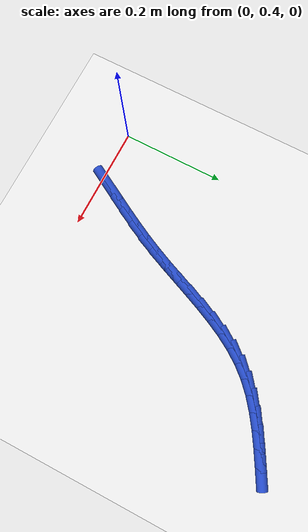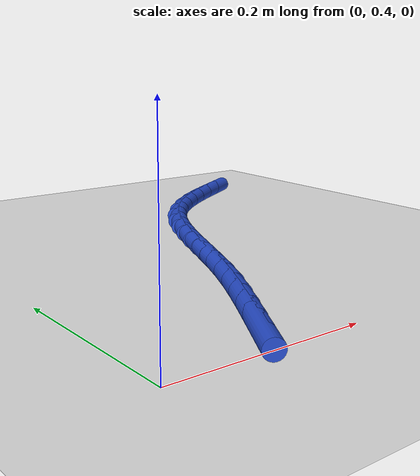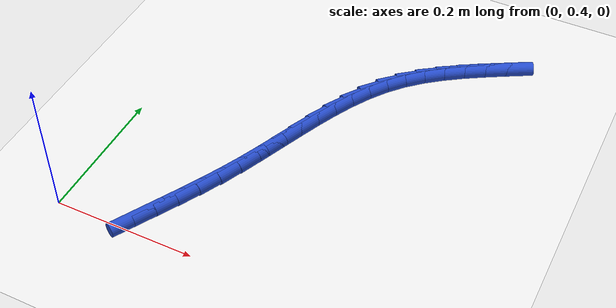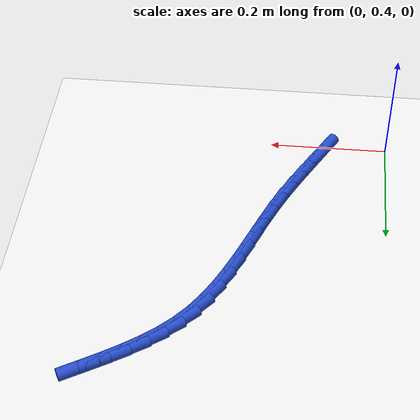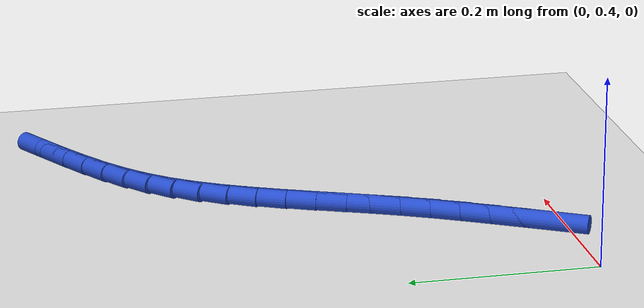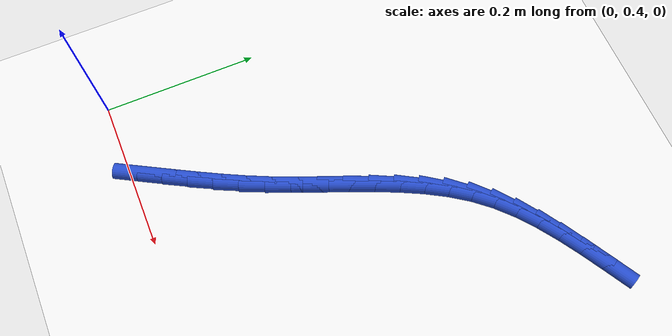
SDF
<sdf version="1.6">
 <world name="default">
  <model name="ground_plane">
   <static>1</static>
   <link name="link">
    <collision name="collision">
     <geometry><plane><normal>0 0 1</normal><size>100 100</size></plane></geometry>
     <surface><friction><ode><mu>100</mu><mu2>50</mu2></ode></friction></surface>
    </collision>
    <visual name="visual">
     <cast_shadows>0</cast_shadows>
     <geometry><plane><normal>0 0 1</normal><size>100 100</size></plane></geometry>
     <material>
      <script><uri>file://media/materials/scripts/gazebo.material</uri><name>Gazebo/WhiteGlow</name></script>
     </material>
    </visual>
   </link>
  </model>
  <model name="line">
   <link name="link_14">
    <pose>0.11067707280748393 0.41863867784121034 0.01 0 1.57 1.055687970877207</pose>
    <collision name="collision">
     <geometry><cylinder><radius>0.01</radius><length>0.08</length></cylinder></geometry>
    </collision>
    <visual name="visual">
     <material>
      <script><name>Gazebo/Blue</name><uri>file://media/materials/scripts/gazebo.material</uri></script>
     </material>
     <geometry><cylinder><radius>0.01</radius><length>0.08</length></cylinder></geometry>
    </visual>
   </link>
   <link name="link_15">
    <pose>0.1262157592240613 0.44608808152789425 0.01 0 1.57 1.0591641786545154</pose>
    <collision name="collision">
     <geometry><cylinder><radius>0.01</radius><length>0.08</length></cylinder></geometry>
    </collision>
    <visual name="visual">
     <material>
      <script><name>Gazebo/Blue</name><uri>file://media/materials/scripts/gazebo.material</uri></script>
     </material>
     <geometry><cylinder><radius>0.01</radius><length>0.08</length></cylinder></geometry>
    </visual>
   </link>
   <link name="link_16">
    <pose>0.141734388219465 0.47372571720743983 0.01 0 1.57 1.071693252115393</pose>
    <collision name="collision">
     <geometry><cylinder><radius>0.01</radius><length>0.08</length></cylinder></geometry>
    </collision>
    <visual name="visual">
     <material>
      <script><name>Gazebo/Blue</name><uri>file://media/materials/scripts/gazebo.material</uri></script>
     </material>
     <geometry><cylinder><radius>0.01</radius><length>0.08</length></cylinder></geometry>
    </visual>
   </link>
   <link name="link_17">
    <pose>0.15698144977811287 0.5016948717338846 0.01 0 1.57 1.093129509462431</pose>
    <collision name="collision">
     <geometry><cylinder><radius>0.01</radius><length>0.08</length></cylinder></geometry>
    </collision>
    <visual name="visual">
     <material>
      <script><name>Gazebo/Blue</name><uri>file://media/materials/scripts/gazebo.material</uri></script>
     </material>
     <geometry><cylinder><radius>0.01</radius><length>0.08</length></cylinder></geometry>
    </visual>
   </link>
   <link name="link_18">
    <pose>0.1717054338844228 0.5301388319612659 0.01 0 1.57 1.1232820498886869</pose>
    <collision name="collision">
     <geometry><cylinder><radius>0.01</radius><length>0.08</length></cylinder></geometry>
    </collision>
    <visual name="visual">
     <material>
      <script><name>Gazebo/Blue</name><uri>file://media/materials/scripts/gazebo.material</uri></script>
     </material>
     <geometry><cylinder><radius>0.01</radius><length>0.08</length></cylinder></geometry>
    </visual>
   </link>
   <link name="link_19">
    <pose>0.18565496490613353 0.5592007794158209 0.01 0 1.57 1.1563778654326762</pose>
    <collision name="collision">
     <geometry><cylinder><radius>0.01</radius><length>0.08</length></cylinder></geometry>
    </collision>
    <visual name="visual">
     <material>
      <script><name>Gazebo/Blue</name><uri>file://media/materials/scripts/gazebo.material</uri></script>
     </material>
     <geometry><cylinder><radius>0.01</radius><length>0.08</length></cylinder></geometry>
    </visual>
   </link>
   <link name="link_20">
    <pose>0.1987239112239782 0.5889100553622971 0.01 0 1.57 1.1765437617916505</pose>
    <collision name="collision">
     <geometry><cylinder><radius>0.01</radius><length>0.08</length></cylinder></geometry>
    </collision>
    <visual name="visual">
     <material>
      <script><name>Gazebo/Blue</name><uri>file://media/materials/scripts/gazebo.material</uri></script>
     </material>
     <geometry><cylinder><radius>0.01</radius><length>0.08</length></cylinder></geometry>
    </visual>
   </link>
   <link name="link_21">
    <pose>0.21122796983377556 0.6189653775935705 0.01 0 1.57 1.1812873094814231</pose>
    <collision name="collision">
     <geometry><cylinder><radius>0.01</radius><length>0.08</length></cylinder></geometry>
    </collision>
    <visual name="visual">
     <material>
      <script><name>Gazebo/Blue</name><uri>file://media/materials/scripts/gazebo.material</uri></script>
     </material>
     <geometry><cylinder><radius>0.01</radius><length>0.08</length></cylinder></geometry>
    </visual>
   </link>
   <link name="link_22">
    <pose>0.22355898667686047 0.6490057794054344 0.01 0 1.57 1.1705714123214415</pose>
    <collision name="collision">
     <geometry><cylinder><radius>0.01</radius><length>0.08</length></cylinder></geometry>
    </collision>
    <visual name="visual">
     <material>
      <script><name>Gazebo/Blue</name><uri>file://media/materials/scripts/gazebo.material</uri></script>
     </material>
     <geometry><cylinder><radius>0.01</radius><length>0.08</length></cylinder></geometry>
    </visual>
   </link>
   <link name="link_23">
    <pose>0.23610880769456769 0.6786702940936831 0.01 0 1.57 1.1438384274842417</pose>
    <collision name="collision">
     <geometry><cylinder><radius>0.01</radius><length>0.08</length></cylinder></geometry>
    </collision>
    <visual name="visual">
     <material>
      <script><name>Gazebo/Blue</name><uri>file://media/materials/scripts/gazebo.material</uri></script>
     </material>
     <geometry><cylinder><radius>0.01</radius><length>0.08</length></cylinder></geometry>
    </visual>
   </link>
   <link name="link_24">
    <pose>0.2492692788282322 0.7075979549541104 0.01 0 1.57 1.1000437780483252</pose>
    <collision name="collision">
     <geometry><cylinder><radius>0.01</radius><length>0.08</length></cylinder></geometry>
    </collision>
    <visual name="visual">
     <material>
      <script><name>Gazebo/Blue</name><uri>file://media/materials/scripts/gazebo.material</uri></script>
     </material>
     <geometry><cylinder><radius>0.01</radius><length>0.08</length></cylinder></geometry>
    </visual>
   </link>
   <link name="link_25">
    <pose>0.2634322460191886 0.7354277952825098 0.01 0 1.57 1.037807565165716</pose>
    <collision name="collision">
     <geometry><cylinder><radius>0.01</radius><length>0.08</length></cylinder></geometry>
    </collision>
    <visual name="visual">
     <material>
      <script><name>Gazebo/Blue</name><uri>file://media/materials/scripts/gazebo.material</uri></script>
     </material>
     <geometry><cylinder><radius>0.01</radius><length>0.08</length></cylinder></geometry>
    </visual>
   </link>
   <link name="link_26">
    <pose>0.2789895552087718 0.7617988483746758 0.01 0 1.57 0.9557754795872594</pose>
    <collision name="collision">
     <geometry><cylinder><radius>0.01</radius><length>0.08</length></cylinder></geometry>
    </collision>
    <visual name="visual">
     <material>
      <script><name>Gazebo/Blue</name><uri>file://media/materials/scripts/gazebo.material</uri></script>
     </material>
     <geometry><cylinder><radius>0.01</radius><length>0.08</length></cylinder></geometry>
    </visual>
   </link>
   <link name="link_27">
    <pose>0.2963330523383165 0.7863501475264018 0.01 0 1.57 0.8540498385770475</pose>
    <collision name="collision">
     <geometry><cylinder><radius>0.01</radius><length>0.08</length></cylinder></geometry>
    </collision>
    <visual name="visual">
     <material>
      <script><name>Gazebo/Blue</name><uri>file://media/materials/scripts/gazebo.material</uri></script>
     </material>
     <geometry><cylinder><radius>0.01</radius><length>0.08</length></cylinder></geometry>
    </visual>
   </link>
   <link name="link_28">
    <pose>0.3158392205192975 0.8087368588711776 0.01 0 1.57 0.7508790296116303</pose>
    <collision name="collision">
     <geometry><cylinder><radius>0.01</radius><length>0.08</length></cylinder></geometry>
    </collision>
    <visual name="visual">
     <material>
      <script><name>Gazebo/Blue</name><uri>file://media/materials/scripts/gazebo.material</uri></script>
     </material>
     <geometry><cylinder><radius>0.01</radius><length>0.08</length></cylinder></geometry>
    </visual>
   </link>
   <link name="link_29">
    <pose>0.3375334818481241 0.8289828052567043 0.01 0 1.57 0.6656146132157014</pose>
    <collision name="collision">
     <geometry><cylinder><radius>0.01</radius><length>0.08</length></cylinder></geometry>
    </collision>
    <visual name="visual">
     <material>
      <script><name>Gazebo/Blue</name><uri>file://media/materials/scripts/gazebo.material</uri></script>
     </material>
     <geometry><cylinder><radius>0.01</radius><length>0.08</length></cylinder></geometry>
    </visual>
   </link>
   <link name="link_30">
    <pose>0.36109146166578243 0.8474791386186858 0.01 0 1.57 0.5998390443122779</pose>
    <collision name="collision">
     <geometry><cylinder><radius>0.01</radius><length>0.08</length></cylinder></geometry>
    </collision>
    <visual name="visual">
     <material>
      <script><name>Gazebo/Blue</name><uri>file://media/materials/scripts/gazebo.material</uri></script>
     </material>
     <geometry><cylinder><radius>0.01</radius><length>0.08</length></cylinder></geometry>
    </visual>
   </link>
   <link name="link_31">
    <pose>0.38617367533635816 0.8646328782041939 0.01 0 1.57 0.5531414395964439</pose>
    <collision name="collision">
     <geometry><cylinder><radius>0.01</radius><length>0.08</length></cylinder></geometry>
    </collision>
    <visual name="visual">
     <material>
      <script><name>Gazebo/Blue</name><uri>file://media/materials/scripts/gazebo.material</uri></script>
     </material>
     <geometry><cylinder><radius>0.01</radius><length>0.08</length></cylinder></geometry>
    </visual>
   </link>
   <link name="link_32">
    <pose>0.4124406382239377 0.8808510432603021 0.01 0 1.57 0.5246039540064308</pose>
    <collision name="collision">
     <geometry><cylinder><radius>0.01</radius><length>0.08</length></cylinder></geometry>
    </collision>
    <visual name="visual">
     <material>
      <script><name>Gazebo/Blue</name><uri>file://media/materials/scripts/gazebo.material</uri></script>
     </material>
     <geometry><cylinder><radius>0.01</radius><length>0.08</length></cylinder></geometry>
    </visual>
   </link>
   <link name="link_33">
    <pose>0.4395528656926066 0.8965406530340823 0.01 0 1.57 0.513295151443364</pose>
    <collision name="collision">
     <geometry><cylinder><radius>0.01</radius><length>0.08</length></cylinder></geometry>
    </collision>
    <visual name="visual">
     <material>
      <script><name>Gazebo/Blue</name><uri>file://media/materials/scripts/gazebo.material</uri></script>
     </material>
     <geometry><cylinder><radius>0.01</radius><length>0.08</length></cylinder></geometry>
    </visual>
   </link>
  </model>
 </world>
</sdf>
